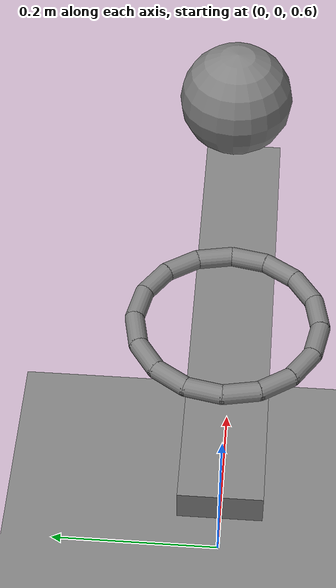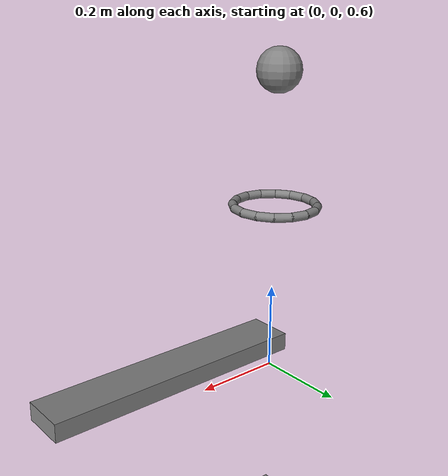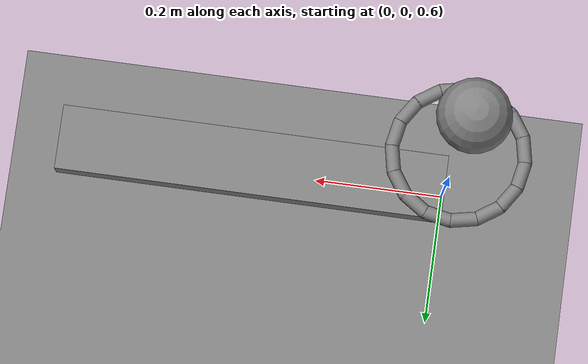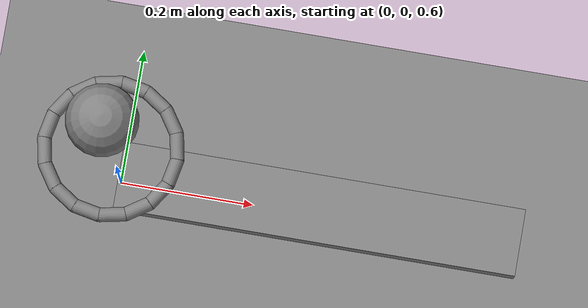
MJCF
<mujoco model="vertical_ring_drop_onto_a_centre-hinged_lever">
  <compiler angle="radian"/>
  <option timestep="0.002"/>
  <worldbody>
    <geom name="floor" type="plane" size="6 6 0.1" friction="0.72 0.005 0.0001"/>
    <body name="ring1">
      <geom name="ring1_00" type="capsule" size="0.01" fromto="0.095 0 1 0.0877686 0.0363549 1" friction="0.72 0.005 0.0001" solref="0.01 1"/>
      <geom name="ring1_01" type="capsule" size="0.01" fromto="0.0877686 0.0363549 1 0.0671751 0.0671751 1" friction="0.72 0.005 0.0001" solref="0.01 1"/>
      <geom name="ring1_02" type="capsule" size="0.01" fromto="0.0671751 0.0671751 1 0.0363549 0.0877686 1" friction="0.72 0.005 0.0001" solref="0.01 1"/>
      <geom name="ring1_03" type="capsule" size="0.01" fromto="0.0363549 0.0877686 1 5.81707e-18 0.095 1" friction="0.72 0.005 0.0001" solref="0.01 1"/>
      <geom name="ring1_04" type="capsule" size="0.01" fromto="5.81707e-18 0.095 1 -0.0363549 0.0877686 1" friction="0.72 0.005 0.0001" solref="0.01 1"/>
      <geom name="ring1_05" type="capsule" size="0.01" fromto="-0.0363549 0.0877686 1 -0.0671751 0.0671751 1" friction="0.72 0.005 0.0001" solref="0.01 1"/>
      <geom name="ring1_06" type="capsule" size="0.01" fromto="-0.0671751 0.0671751 1 -0.0877686 0.0363549 1" friction="0.72 0.005 0.0001" solref="0.01 1"/>
      <geom name="ring1_07" type="capsule" size="0.01" fromto="-0.0877686 0.0363549 1 -0.095 1.16341e-17 1" friction="0.72 0.005 0.0001" solref="0.01 1"/>
      <geom name="ring1_08" type="capsule" size="0.01" fromto="-0.095 1.16341e-17 1 -0.0877686 -0.0363549 1" friction="0.72 0.005 0.0001" solref="0.01 1"/>
      <geom name="ring1_09" type="capsule" size="0.01" fromto="-0.0877686 -0.0363549 1 -0.0671751 -0.0671751 1" friction="0.72 0.005 0.0001" solref="0.01 1"/>
      <geom name="ring1_10" type="capsule" size="0.01" fromto="-0.0671751 -0.0671751 1 -0.0363549 -0.0877686 1" friction="0.72 0.005 0.0001" solref="0.01 1"/>
      <geom name="ring1_11" type="capsule" size="0.01" fromto="-0.0363549 -0.0877686 1 -1.74512e-17 -0.095 1" friction="0.72 0.005 0.0001" solref="0.01 1"/>
      <geom name="ring1_12" type="capsule" size="0.01" fromto="-1.74512e-17 -0.095 1 0.0363549 -0.0877686 1" friction="0.72 0.005 0.0001" solref="0.01 1"/>
      <geom name="ring1_13" type="capsule" size="0.01" fromto="0.0363549 -0.0877686 1 0.0671751 -0.0671751 1" friction="0.72 0.005 0.0001" solref="0.01 1"/>
      <geom name="ring1_14" type="capsule" size="0.01" fromto="0.0671751 -0.0671751 1 0.0877686 -0.0363549 1" friction="0.72 0.005 0.0001" solref="0.01 1"/>
      <geom name="ring1_15" type="capsule" size="0.01" fromto="0.0877686 -0.0363549 1 0.095 -2.32683e-17 1" friction="0.72 0.005 0.0001" solref="0.01 1"/>
    </body>
    <body name="lever1" pos="0.3 0 0.68">
      <joint name="lever1_hinge" type="hinge" pos="0 0 0" axis="0 1 0" damping="0.04"/>
      <geom name="lever1" type="box" pos="0 0 0" size="0.3 0.05 0.02" mass="0.5" friction="0.72 0.005 0.0001" solref="0.01 1"/>
    </body>
    <body name="ball1" pos="0 0 1.3">
      <freejoint/>
      <geom name="ball1" type="sphere" pos="0 0 0" size="0.05" mass="0.2" condim="6" friction="0.72 0.005 0.0001" solref="0.01 1"/>
    </body>
  </worldbody>
  <keyframe>
    <key name="start" qpos="0 0 0 1.3 1 0 0 0" qvel="0 0 0 0 0 0 0"/>
  </keyframe>
</mujoco>
